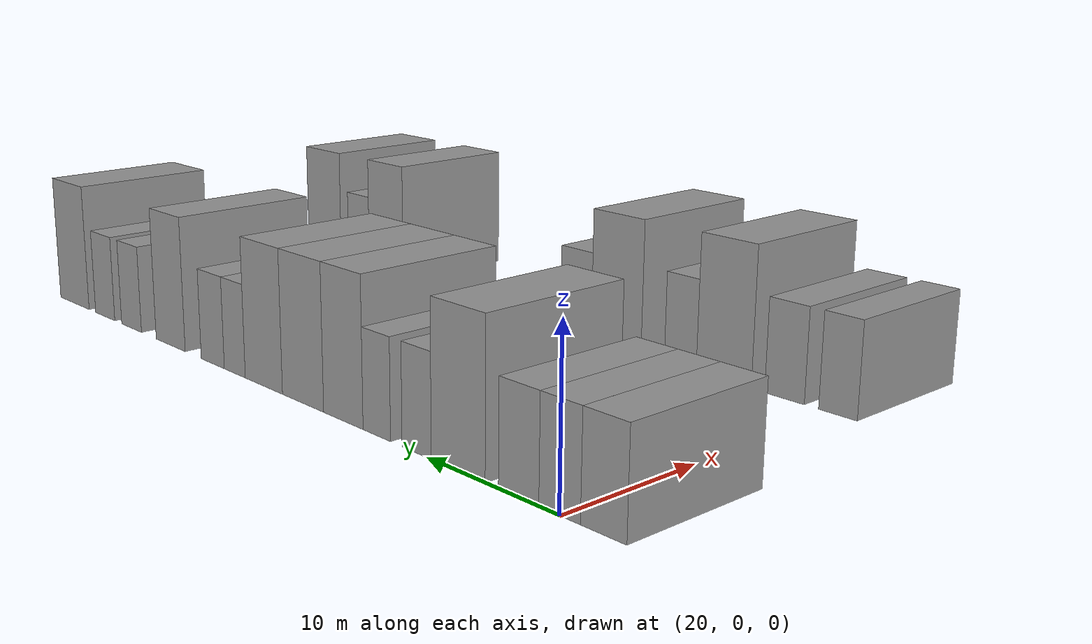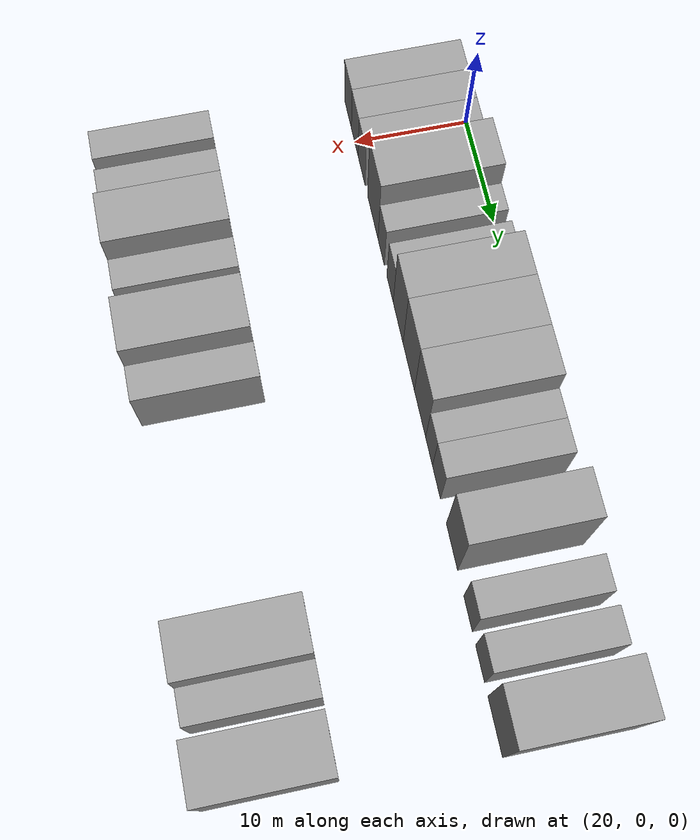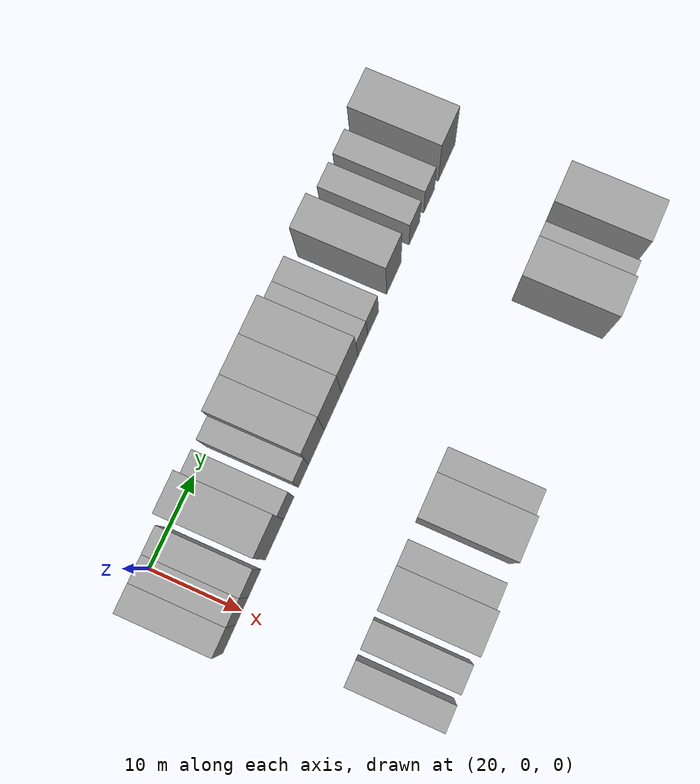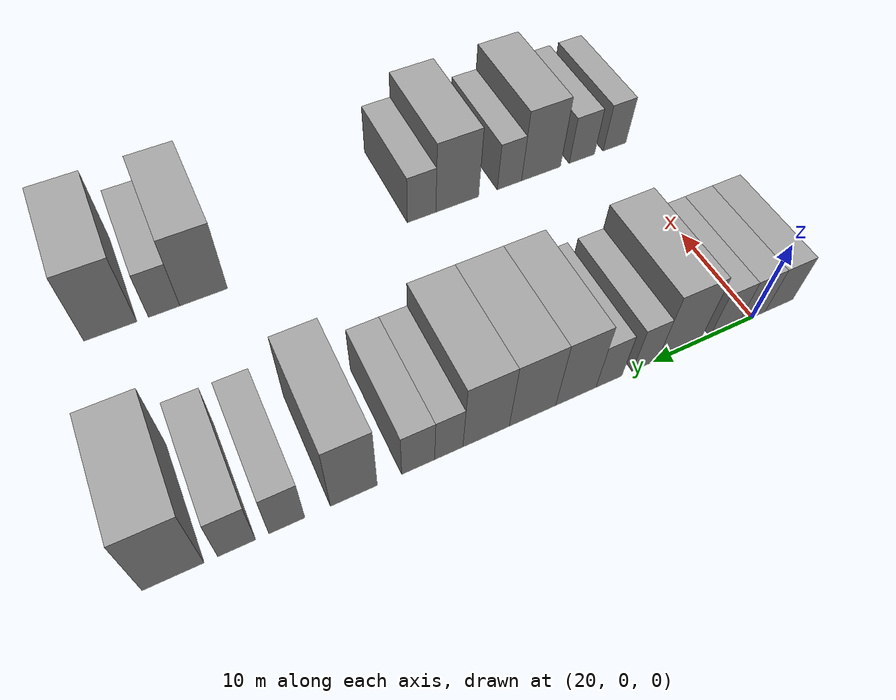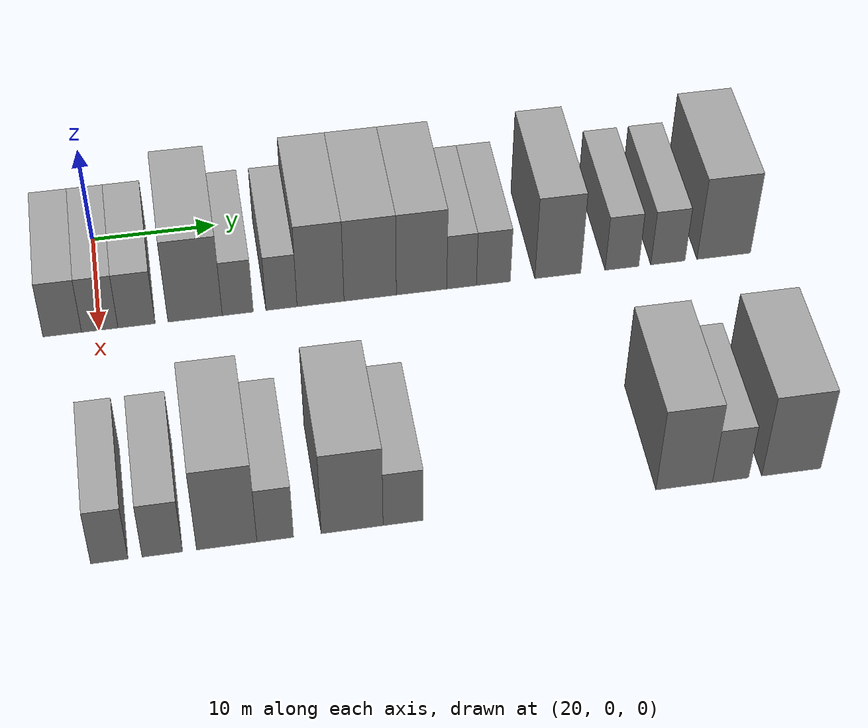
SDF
<sdf version="1.6">
 <world name="default">
  <model name="building_48">
   <static>1</static>
   <pose>25.0000 -2.8860 0 0.000000 0.000000 0.000000</pose>
   <link name="link">
    <pose>0 0 3.00 0 0 0</pose>
    <collision name="collision"><geometry><box><size>10.0000 2.9895 6.0000</size></box></geometry></collision>
    <visual name="visual">
     <cast_shadows>0</cast_shadows>
     <geometry><box><size>10.0000 2.9895 6.0000</size></box></geometry>
     <material>
      <script>
       <uri>model://grey_wall/materials/scripts</uri>
       <uri>model://grey_wall/materials/textures</uri>
       <name>vrc/grey_wall</name>
      </script>
     </material>
    </visual>
   </link>
  </model>
  <model name="building_49">
   <static>1</static>
   <pose>25.0000 0.0297 0 0.000000 0.000000 0.000000</pose>
   <link name="link">
    <pose>0 0 3.00 0 0 0</pose>
    <collision name="collision"><geometry><box><size>10.0000 2.8418 6.0000</size></box></geometry></collision>
    <visual name="visual">
     <cast_shadows>0</cast_shadows>
     <geometry><box><size>10.0000 2.8418 6.0000</size></box></geometry>
     <material>
      <script>
       <uri>model://grey_wall/materials/scripts</uri>
       <uri>model://grey_wall/materials/textures</uri>
       <name>vrc/grey_wall</name>
      </script>
     </material>
    </visual>
   </link>
  </model>
  <model name="building_50">
   <static>1</static>
   <pose>25.0000 2.9103 0 0.000000 0.000000 0.000000</pose>
   <link name="link">
    <pose>0 0 3.00 0 0 0</pose>
    <collision name="collision"><geometry><box><size>10.0000 2.9194 6.0000</size></box></geometry></collision>
    <visual name="visual">
     <cast_shadows>0</cast_shadows>
     <geometry><box><size>10.0000 2.9194 6.0000</size></box></geometry>
     <material>
      <script>
       <uri>model://grey_wall/materials/scripts</uri>
       <uri>model://grey_wall/materials/textures</uri>
       <name>vrc/grey_wall</name>
      </script>
     </material>
    </visual>
   </link>
  </model>
  <model name="building_51">
   <static>1</static>
   <pose>25.0000 7.5090 0 0.000000 0.000000 0.000000</pose>
   <link name="link">
    <pose>0 0 4.50 0 0 0</pose>
    <collision name="collision"><geometry><box><size>10.0000 4.2781 9.0000</size></box></geometry></collision>
    <visual name="visual">
     <cast_shadows>0</cast_shadows>
     <geometry><box><size>10.0000 4.2781 9.0000</size></box></geometry>
     <material>
      <script>
       <uri>model://grey_wall/materials/scripts</uri>
       <uri>model://grey_wall/materials/textures</uri>
       <name>vrc/grey_wall</name>
      </script>
     </material>
    </visual>
   </link>
  </model>
  <model name="building_52">
   <static>1</static>
   <pose>25.0000 10.8763 0 0.000000 0.000000 0.000000</pose>
   <link name="link">
    <pose>0 0 3.00 0 0 0</pose>
    <collision name="collision"><geometry><box><size>10.0000 2.4564 6.0000</size></box></geometry></collision>
    <visual name="visual">
     <cast_shadows>0</cast_shadows>
     <geometry><box><size>10.0000 2.4564 6.0000</size></box></geometry>
     <material>
      <script>
       <uri>model://grey_wall/materials/scripts</uri>
       <uri>model://grey_wall/materials/textures</uri>
       <name>vrc/grey_wall</name>
      </script>
     </material>
    </visual>
   </link>
  </model>
  <model name="building_53">
   <static>1</static>
   <pose>25.0000 14.3415 0 0.000000 0.000000 0.000000</pose>
   <link name="link">
    <pose>0 0 3.00 0 0 0</pose>
    <collision name="collision"><geometry><box><size>10.0000 2.4740 6.0000</size></box></geometry></collision>
    <visual name="visual">
     <cast_shadows>0</cast_shadows>
     <geometry><box><size>10.0000 2.4740 6.0000</size></box></geometry>
     <material>
      <script>
       <uri>model://grey_wall/materials/scripts</uri>
       <uri>model://grey_wall/materials/textures</uri>
       <name>vrc/grey_wall</name>
      </script>
     </material>
    </visual>
   </link>
  </model>
  <model name="building_54">
   <static>1</static>
   <pose>25.0000 17.4514 0 0.000000 0.000000 0.000000</pose>
   <link name="link">
    <pose>0 0 4.50 0 0 0</pose>
    <collision name="collision"><geometry><box><size>10.0000 3.7459 9.0000</size></box></geometry></collision>
    <visual name="visual">
     <cast_shadows>0</cast_shadows>
     <geometry><box><size>10.0000 3.7459 9.0000</size></box></geometry>
     <material>
      <script>
       <uri>model://grey_wall/materials/scripts</uri>
       <uri>model://grey_wall/materials/textures</uri>
       <name>vrc/grey_wall</name>
      </script>
     </material>
    </visual>
   </link>
  </model>
  <model name="building_55">
   <static>1</static>
   <pose>25.0000 21.4215 0 0.000000 0.000000 0.000000</pose>
   <link name="link">
    <pose>0 0 4.50 0 0 0</pose>
    <collision name="collision"><geometry><box><size>10.0000 4.1944 9.0000</size></box></geometry></collision>
    <visual name="visual">
     <cast_shadows>0</cast_shadows>
     <geometry><box><size>10.0000 4.1944 9.0000</size></box></geometry>
     <material>
      <script>
       <uri>model://grey_wall/materials/scripts</uri>
       <uri>model://grey_wall/materials/textures</uri>
       <name>vrc/grey_wall</name>
      </script>
     </material>
    </visual>
   </link>
  </model>
  <model name="building_56">
   <static>1</static>
   <pose>25.0000 25.5476 0 0.000000 0.000000 0.000000</pose>
   <link name="link">
    <pose>0 0 4.50 0 0 0</pose>
    <collision name="collision"><geometry><box><size>10.0000 4.0577 9.0000</size></box></geometry></collision>
    <visual name="visual">
     <cast_shadows>0</cast_shadows>
     <geometry><box><size>10.0000 4.0577 9.0000</size></box></geometry>
     <material>
      <script>
       <uri>model://grey_wall/materials/scripts</uri>
       <uri>model://grey_wall/materials/textures</uri>
       <name>vrc/grey_wall</name>
      </script>
     </material>
    </visual>
   </link>
  </model>
  <model name="building_57">
   <static>1</static>
   <pose>25.0000 28.7807 0 0.000000 0.000000 0.000000</pose>
   <link name="link">
    <pose>0 0 3.00 0 0 0</pose>
    <collision name="collision"><geometry><box><size>10.0000 2.4084 6.0000</size></box></geometry></collision>
    <visual name="visual">
     <cast_shadows>0</cast_shadows>
     <geometry><box><size>10.0000 2.4084 6.0000</size></box></geometry>
     <material>
      <script>
       <uri>model://grey_wall/materials/scripts</uri>
       <uri>model://grey_wall/materials/textures</uri>
       <name>vrc/grey_wall</name>
      </script>
     </material>
    </visual>
   </link>
  </model>
  <model name="building_58">
   <static>1</static>
   <pose>25.0000 31.3648 0 0.000000 0.000000 0.000000</pose>
   <link name="link">
    <pose>0 0 3.00 0 0 0</pose>
    <collision name="collision"><geometry><box><size>10.0000 2.7599 6.0000</size></box></geometry></collision>
    <visual name="visual">
     <cast_shadows>0</cast_shadows>
     <geometry><box><size>10.0000 2.7599 6.0000</size></box></geometry>
     <material>
      <script>
       <uri>model://grey_wall/materials/scripts</uri>
       <uri>model://grey_wall/materials/textures</uri>
       <name>vrc/grey_wall</name>
      </script>
     </material>
    </visual>
   </link>
  </model>
  <model name="building_59">
   <static>1</static>
   <pose>25.0000 36.6271 0 0.000000 0.000000 0.000000</pose>
   <link name="link">
    <pose>0 0 4.50 0 0 0</pose>
    <collision name="collision"><geometry><box><size>10.0000 3.7646 9.0000</size></box></geometry></collision>
    <visual name="visual">
     <cast_shadows>0</cast_shadows>
     <geometry><box><size>10.0000 3.7646 9.0000</size></box></geometry>
     <material>
      <script>
       <uri>model://grey_wall/materials/scripts</uri>
       <uri>model://grey_wall/materials/textures</uri>
       <name>vrc/grey_wall</name>
      </script>
     </material>
    </visual>
   </link>
  </model>
  <model name="building_60">
   <static>1</static>
   <pose>25.0000 41.8939 0 0.000000 0.000000 0.000000</pose>
   <link name="link">
    <pose>0 0 3.00 0 0 0</pose>
    <collision name="collision"><geometry><box><size>10.0000 2.7690 6.0000</size></box></geometry></collision>
    <visual name="visual">
     <cast_shadows>0</cast_shadows>
     <geometry><box><size>10.0000 2.7690 6.0000</size></box></geometry>
     <material>
      <script>
       <uri>model://grey_wall/materials/scripts</uri>
       <uri>model://grey_wall/materials/textures</uri>
       <name>vrc/grey_wall</name>
      </script>
     </material>
    </visual>
   </link>
  </model>
  <model name="building_61">
   <static>1</static>
   <pose>25.0000 45.6931 0 0.000000 0.000000 0.000000</pose>
   <link name="link">
    <pose>0 0 3.00 0 0 0</pose>
    <collision name="collision"><geometry><box><size>10.0000 2.8296 6.0000</size></box></geometry></collision>
    <visual name="visual">
     <cast_shadows>0</cast_shadows>
     <geometry><box><size>10.0000 2.8296 6.0000</size></box></geometry>
     <material>
      <script>
       <uri>model://grey_wall/materials/scripts</uri>
       <uri>model://grey_wall/materials/textures</uri>
       <name>vrc/grey_wall</name>
      </script>
     </material>
    </visual>
   </link>
  </model>
  <model name="building_62">
   <static>1</static>
   <pose>25.0000 50.3358 0 0.000000 0.000000 0.000000</pose>
   <link name="link">
    <pose>0 0 4.50 0 0 0</pose>
    <collision name="collision"><geometry><box><size>10.0000 4.4559 9.0000</size></box></geometry></collision>
    <visual name="visual">
     <cast_shadows>0</cast_shadows>
     <geometry><box><size>10.0000 4.4559 9.0000</size></box></geometry>
     <material>
      <script>
       <uri>model://grey_wall/materials/scripts</uri>
       <uri>model://grey_wall/materials/textures</uri>
       <name>vrc/grey_wall</name>
      </script>
     </material>
    </visual>
   </link>
  </model>
  <model name="building_149">
   <static>1</static>
   <pose>47.0000 -0.5141 0 0.000000 0.000000 0.000000</pose>
   <link name="link">
    <pose>0 0 3.00 0 0 0</pose>
    <collision name="collision"><geometry><box><size>10.0000 2.6429 6.0000</size></box></geometry></collision>
    <visual name="visual">
     <cast_shadows>0</cast_shadows>
     <geometry><box><size>10.0000 2.6429 6.0000</size></box></geometry>
     <material>
      <script>
       <uri>model://grey_wall/materials/scripts</uri>
       <uri>model://grey_wall/materials/textures</uri>
       <name>vrc/grey_wall</name>
      </script>
     </material>
    </visual>
   </link>
  </model>
  <model name="building_150">
   <static>1</static>
   <pose>47.0000 3.2470 0 0.000000 0.000000 0.000000</pose>
   <link name="link">
    <pose>0 0 3.00 0 0 0</pose>
    <collision name="collision"><geometry><box><size>10.0000 2.8794 6.0000</size></box></geometry></collision>
    <visual name="visual">
     <cast_shadows>0</cast_shadows>
     <geometry><box><size>10.0000 2.8794 6.0000</size></box></geometry>
     <material>
      <script>
       <uri>model://grey_wall/materials/scripts</uri>
       <uri>model://grey_wall/materials/textures</uri>
       <name>vrc/grey_wall</name>
      </script>
     </material>
    </visual>
   </link>
  </model>
  <model name="building_151">
   <static>1</static>
   <pose>47.0000 7.8479 0 0.000000 0.000000 0.000000</pose>
   <link name="link">
    <pose>0 0 4.50 0 0 0</pose>
    <collision name="collision"><geometry><box><size>10.0000 4.3224 9.0000</size></box></geometry></collision>
    <visual name="visual">
     <cast_shadows>0</cast_shadows>
     <geometry><box><size>10.0000 4.3224 9.0000</size></box></geometry>
     <material>
      <script>
       <uri>model://grey_wall/materials/scripts</uri>
       <uri>model://grey_wall/materials/textures</uri>
       <name>vrc/grey_wall</name>
      </script>
     </material>
    </visual>
   </link>
  </model>
  <model name="building_152">
   <static>1</static>
   <pose>47.0000 11.3276 0 0.000000 0.000000 0.000000</pose>
   <link name="link">
    <pose>0 0 3.00 0 0 0</pose>
    <collision name="collision"><geometry><box><size>10.0000 2.6370 6.0000</size></box></geometry></collision>
    <visual name="visual">
     <cast_shadows>0</cast_shadows>
     <geometry><box><size>10.0000 2.6370 6.0000</size></box></geometry>
     <material>
      <script>
       <uri>model://grey_wall/materials/scripts</uri>
       <uri>model://grey_wall/materials/textures</uri>
       <name>vrc/grey_wall</name>
      </script>
     </material>
    </visual>
   </link>
  </model>
  <model name="building_153">
   <static>1</static>
   <pose>47.0000 16.8913 0 0.000000 0.000000 0.000000</pose>
   <link name="link">
    <pose>0 0 4.50 0 0 0</pose>
    <collision name="collision"><geometry><box><size>10.0000 4.4905 9.0000</size></box></geometry></collision>
    <visual name="visual">
     <cast_shadows>0</cast_shadows>
     <geometry><box><size>10.0000 4.4905 9.0000</size></box></geometry>
     <material>
      <script>
       <uri>model://grey_wall/materials/scripts</uri>
       <uri>model://grey_wall/materials/textures</uri>
       <name>vrc/grey_wall</name>
      </script>
     </material>
    </visual>
   </link>
  </model>
  <model name="building_154">
   <static>1</static>
   <pose>47.0000 20.5919 0 0.000000 0.000000 0.000000</pose>
   <link name="link">
    <pose>0 0 3.00 0 0 0</pose>
    <collision name="collision"><geometry><box><size>10.0000 2.9106 6.0000</size></box></geometry></collision>
    <visual name="visual">
     <cast_shadows>0</cast_shadows>
     <geometry><box><size>10.0000 2.9106 6.0000</size></box></geometry>
     <material>
      <script>
       <uri>model://grey_wall/materials/scripts</uri>
       <uri>model://grey_wall/materials/textures</uri>
       <name>vrc/grey_wall</name>
      </script>
     </material>
    </visual>
   </link>
  </model>
  <model name="building_155">
   <static>1</static>
   <pose>47.0000 41.4331 0 0.000000 0.000000 0.000000</pose>
   <link name="link">
    <pose>0 0 4.50 0 0 0</pose>
    <collision name="collision"><geometry><box><size>10.0000 4.2573 9.0000</size></box></geometry></collision>
    <visual name="visual">
     <cast_shadows>0</cast_shadows>
     <geometry><box><size>10.0000 4.2573 9.0000</size></box></geometry>
     <material>
      <script>
       <uri>model://grey_wall/materials/scripts</uri>
       <uri>model://grey_wall/materials/textures</uri>
       <name>vrc/grey_wall</name>
      </script>
     </material>
    </visual>
   </link>
  </model>
  <model name="building_156">
   <static>1</static>
   <pose>47.0000 44.9267 0 0.000000 0.000000 0.000000</pose>
   <link name="link">
    <pose>0 0 3.00 0 0 0</pose>
    <collision name="collision"><geometry><box><size>10.0000 2.7297 6.0000</size></box></geometry></collision>
    <visual name="visual">
     <cast_shadows>0</cast_shadows>
     <geometry><box><size>10.0000 2.7297 6.0000</size></box></geometry>
     <material>
      <script>
       <uri>model://grey_wall/materials/scripts</uri>
       <uri>model://grey_wall/materials/textures</uri>
       <name>vrc/grey_wall</name>
      </script>
     </material>
    </visual>
   </link>
  </model>
  <model name="building_157">
   <static>1</static>
   <pose>47.0000 49.5311 0 0.000000 0.000000 0.000000</pose>
   <link name="link">
    <pose>0 0 4.50 0 0 0</pose>
    <collision name="collision"><geometry><box><size>10.0000 4.4792 9.0000</size></box></geometry></collision>
    <visual name="visual">
     <cast_shadows>0</cast_shadows>
     <geometry><box><size>10.0000 4.4792 9.0000</size></box></geometry>
     <material>
      <script>
       <uri>model://grey_wall/materials/scripts</uri>
       <uri>model://grey_wall/materials/textures</uri>
       <name>vrc/grey_wall</name>
      </script>
     </material>
    </visual>
   </link>
  </model>
 </world>
</sdf>
